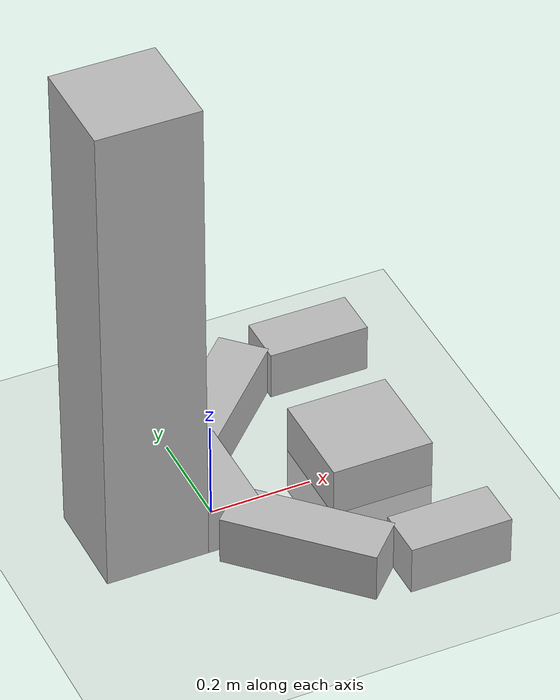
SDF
<?xml version="1.0"?>
  <sdf version="1.4">
    <world name="default">

    <!-- A ground plane -->
    <include>
      <uri>model://ground_plane</uri>
    </include>

    <!-- A global light source -->
    <include>
      <uri>model://sun</uri>
    </include>

    <include>
        <uri>model://gripper_model</uri>
    </include>

    <include>
        <uri>model://box_model</uri>
    </include>

    </world>
  </sdf>

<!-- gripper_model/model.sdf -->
<sdf version="1.4">
    <model name="gripper_model">
        <link name="riser">
            <pose>-0.15 0.0 0.5 0 0 0</pose>
            <inertial>
                <pose>0 0 -0.5 0 0 0</pose>
                <inertia>
                    <ixx>0.01</ixx>
                    <ixy>0</ixy>
                    <ixz>0</ixz>
                    <iyy>0.01</iyy>
                    <iyz>0</iyz>
                    <izz>0.01</izz>
                </inertia>
                <mass>50.0</mass>
            </inertial>
            <collision name="collision">
                <geometry>
                    <box>
                        <size>0.2 0.2 1.0</size>
                    </box>
                </geometry>
            </collision>
            <visual name="visual">
                <geometry>
                    <box>
                        <size>0.2 0.2 1.0</size>
                    </box>
                </geometry>
                <material>
                    <script>Gazebo/Purple</script>
                </material>
            </visual>
        </link>
        <link name="palm">
            <pose>0.0 0.0 0.05 0 0 0</pose>
            <inertial>
                <inertia>
                    <ixx>0.01</ixx>
                    <ixy>0</ixy>
                    <ixz>0</ixz>
                    <iyy>0.01</iyy>
                    <iyz>0</iyz>
                    <izz>0.01</izz>
                </inertia>
                <mass>0.5</mass>
            </inertial>
            <collision name="collision">
                <geometry>
                    <box>
                        <size>0.1 0.2 0.1</size>
                    </box>
                </geometry>
            </collision>
            <visual name="visual">
                <geometry>
                    <box>
                        <size>0.1 0.2 0.1</size>
                    </box>
                </geometry>
                <material>
                    <script>Gazebo/Red</script>
                </material>
            </visual>
        </link>
        <link name="left_finger">
            <pose>0.1 0.2 0.05 0 0 -0.78539</pose>
            <inertial>
                <inertia>
                    <ixx>0.01</ixx>
                    <ixy>0</ixy>
                    <ixz>0</ixz>
                    <iyy>0.01</iyy>
                    <iyz>0</iyz>
                    <izz>0.01</izz>
                </inertia>
                <mass>0.1</mass>
            </inertial>
            <collision name="collision">
                <geometry>
                    <box>
                        <size>0.1 0.3 0.1</size>
                    </box>
                </geometry>
            </collision>
            <visual name="visual">
                <geometry>
                    <box>
                        <size>0.1 0.3 0.1</size>
                    </box>
                </geometry>
                <material>
                    <script>Gazebo/Blue</script>
                </material>
            </visual>
        </link>
        <link name="left_finger_tip">
            <pose>0.336 0.3 0.05 0 0 1.5707</pose>
            <inertial>
                <inertia>
                    <ixx>0.01</ixx>
                    <ixy>0</ixy>
                    <ixz>0</ixz>
                    <iyy>0.01</iyy>
                    <iyz>0</iyz>
                    <izz>0.01</izz>
                </inertia>
                <mass>0.1</mass>
            </inertial>
            <collision name="collision">
                <geometry>
                    <box>
                        <size>0.1 0.2 0.1</size>
                    </box>
                </geometry>
            </collision>
            <visual name="visual">
                <geometry>
                    <box>
                        <size>0.1 0.2 0.1</size>
                    </box>
                </geometry>
                <material>
                    <script>Gazebo/Blue</script>
                </material>
            </visual>
        </link>
        <link name="right_finger">
            <pose>0.1 -0.2 0.05 0 0 .78539</pose>
            <inertial>
                <inertia>
                    <ixx>0.01</ixx>
                    <ixy>0</ixy>
                    <ixz>0</ixz>
                    <iyy>0.01</iyy>
                    <iyz>0</iyz>
                    <izz>0.01</izz>
                </inertia>
                <mass>0.1</mass>
            </inertial>
            <collision name="collision">
                <geometry>
                    <box>
                        <size>0.1 0.3 0.1</size>
                    </box>
                </geometry>
            </collision>
            <visual name="visual">
                <geometry>
                    <box>
                        <size>0.1 0.3 0.1</size>
                    </box>
                </geometry>
                <material>
                    <script>Gazebo/Green</script>
                </material>
            </visual>
        </link>
        <link name="right_finger_tip">
            <pose>0.336 -0.3 0.05 0 0 1.5707</pose>
            <inertial>
                <inertia>
                    <ixx>0.01</ixx>
                    <ixy>0</ixy>
                    <ixz>0</ixz>
                    <iyy>0.01</iyy>
                    <iyz>0</iyz>
                    <izz>0.01</izz>
                </inertia>
                <mass>0.1</mass>
            </inertial>
            <collision name="collision">
                <geometry>
                    <box>
                        <size>0.1 0.2 0.1</size>
                    </box>
                </geometry>
            </collision>
            <visual name="visual">
                <geometry>
                    <box>
                        <size>0.1 0.2 0.1</size>
                    </box>
                </geometry>
                <material>
                    <script>Gazebo/Green</script>
                </material>
            </visual>
        </link>

        <static>false</static>

        <joint name="palm_left_finger" type="revolute">
            <pose>0 -0.15 0 0 0 0</pose>
            <child>left_finger</child>
            <parent>palm</parent>
            <axis>
                <limit>
                    <lower>-0.4</lower>
                    <upper>0.4</upper>
                </limit>
                <xyz>0 0 1</xyz>
            </axis>
        </joint>
        <joint name="left_finger_tip" type="revolute">
            <pose>0 0.1 0 0 0 0</pose>
            <child>left_finger_tip</child>
            <parent>left_finger</parent>
            <axis>
                <limit>
                    <lower>-0.4</lower>
                    <upper>0.4</upper>
                </limit>
                <xyz>0 0 1</xyz>
            </axis>
        </joint>
        <joint name="palm_right_finger" type="revolute">
            <pose>0 0.15 0 0 0 0</pose>
            <child>right_finger</child>
            <parent>palm</parent>
            <axis>
                <limit>
                    <lower>-0.4</lower>
                    <upper>0.4</upper>
                </limit>
                <xyz>0 0 1</xyz>
            </axis>
        </joint>
        <joint name="right_finger_tip" type="revolute">
            <pose>0 0.1 0 0 0 0</pose>
            <child>right_finger_tip</child>
            <parent>right_finger</parent>
            <axis>
                <limit>
                    <lower>-0.4</lower>
                    <upper>0.4</upper>
                </limit>
                <xyz>0 0 1</xyz>
            </axis>
        </joint>
        <joint name="palm_riser" type="prismatic">
            <child>palm</child>
            <parent>riser</parent>
            <axis>
                <limit>
                    <lower>0</lower>
                    <upper>0.9</upper>
                </limit>
                <xyz>0 0 1</xyz>
            </axis>
        </joint>
    </model>
</sdf>

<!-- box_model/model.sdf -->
<sdf version="1.4">
    <model name="box_model">
        <link name="box">
            <pose>0.3 0.0 0 0 0 0</pose>
            <inertial>
                <pose>0 0 0 0 0 0</pose>
                <inertia>
                    <ixx>0.01</ixx>
                    <ixy>0</ixy>
                    <ixz>0</ixz>
                    <iyy>0.01</iyy>
                    <iyz>0</iyz>
                    <izz>0.01</izz>
                </inertia>
                <mass>1.0</mass>
            </inertial>
            <collision name="collision">
                <geometry>
                    <box>
                        <size>0.2 0.2 0.2</size>
                    </box>
                </geometry>
            </collision>
            <visual name="visual">
                <geometry>
                    <box>
                        <size>0.2 0.2 0.2</size>
                    </box>
                </geometry>
                <material>
                    <script>Gazebo/Purple</script>
                </material>
            </visual>
        </link>
    </model>
</sdf>
